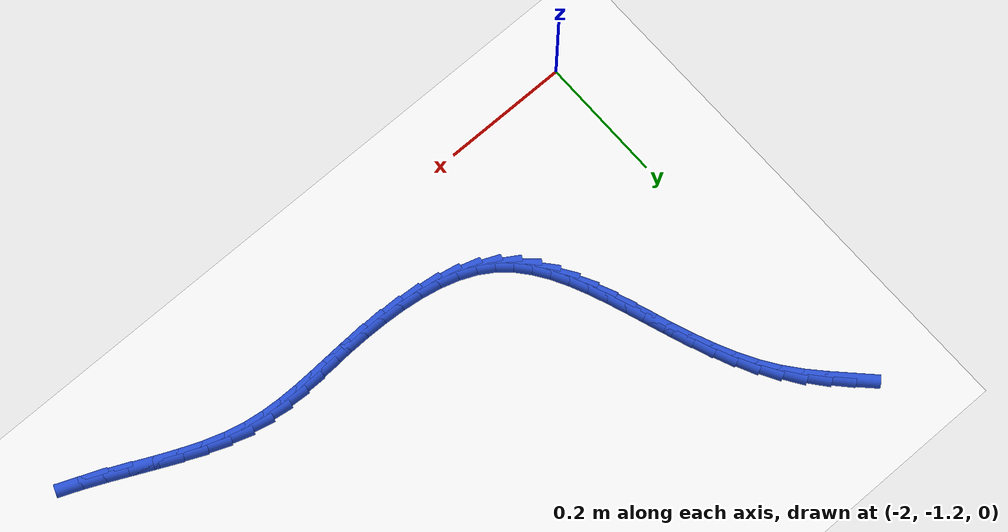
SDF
<sdf version="1.6">
 <world name="default">
  <model name="ground_plane">
   <static>1</static>
   <link name="link">
    <collision name="collision">
     <geometry><plane><normal>0 0 1</normal><size>100 100</size></plane></geometry>
     <surface><friction><ode><mu>100</mu><mu2>50</mu2></ode></friction></surface>
    </collision>
    <visual name="visual">
     <cast_shadows>0</cast_shadows>
     <geometry><plane><normal>0 0 1</normal><size>100 100</size></plane></geometry>
     <material>
      <script><uri>file://media/materials/scripts/gazebo.material</uri><name>Gazebo/WhiteGlow</name></script>
     </material>
    </visual>
   </link>
  </model>
  <model name="line">
   <link name="link_133">
    <pose>-2.002611352327267 -0.565368134742035 0.01 0 1.57 -0.789677448884228</pose>
    <collision name="collision">
     <geometry><cylinder><radius>0.01</radius><length>0.08</length></cylinder></geometry>
    </collision>
    <visual name="visual">
     <material>
      <script><name>Gazebo/Blue</name><uri>file://media/materials/scripts/gazebo.material</uri></script>
     </material>
     <geometry><cylinder><radius>0.01</radius><length>0.08</length></cylinder></geometry>
    </visual>
   </link>
   <link name="link_134">
    <pose>-1.9784343191150222 -0.5897529793617989 0.01 0 1.57 -0.8221368517772105</pose>
    <collision name="collision">
     <geometry><cylinder><radius>0.01</radius><length>0.08</length></cylinder></geometry>
    </collision>
    <visual name="visual">
     <material>
      <script><name>Gazebo/Blue</name><uri>file://media/materials/scripts/gazebo.material</uri></script>
     </material>
     <geometry><cylinder><radius>0.01</radius><length>0.08</length></cylinder></geometry>
    </visual>
   </link>
   <link name="link_135">
    <pose>-1.9548881667045632 -0.6150960668547448 0.01 0 1.57 -0.8876789788598888</pose>
    <collision name="collision">
     <geometry><cylinder><radius>0.01</radius><length>0.08</length></cylinder></geometry>
    </collision>
    <visual name="visual">
     <material>
      <script><name>Gazebo/Blue</name><uri>file://media/materials/scripts/gazebo.material</uri></script>
     </material>
     <geometry><cylinder><radius>0.01</radius><length>0.08</length></cylinder></geometry>
    </visual>
   </link>
   <link name="link_136">
    <pose>-1.9331609353949673 -0.6417935627710604 0.01 0 1.57 -0.9770350653606327</pose>
    <collision name="collision">
     <geometry><cylinder><radius>0.01</radius><length>0.08</length></cylinder></geometry>
    </collision>
    <visual name="visual">
     <material>
      <script><name>Gazebo/Blue</name><uri>file://media/materials/scripts/gazebo.material</uri></script>
     </material>
     <geometry><cylinder><radius>0.01</radius><length>0.08</length></cylinder></geometry>
    </visual>
   </link>
   <link name="link_137">
    <pose>-1.9140731339654895 -0.6700710800599232 0.01 0 1.57 -1.0575223526639508</pose>
    <collision name="collision">
     <geometry><cylinder><radius>0.01</radius><length>0.08</length></cylinder></geometry>
    </collision>
    <visual name="visual">
     <material>
      <script><name>Gazebo/Blue</name><uri>file://media/materials/scripts/gazebo.material</uri></script>
     </material>
     <geometry><cylinder><radius>0.01</radius><length>0.08</length></cylinder></geometry>
    </visual>
   </link>
   <link name="link_138">
    <pose>-1.8973918554884466 -0.6996653952603628 0.01 0 1.57 -1.1225852937675782</pose>
    <collision name="collision">
     <geometry><cylinder><radius>0.01</radius><length>0.08</length></cylinder></geometry>
    </collision>
    <visual name="visual">
     <material>
      <script><name>Gazebo/Blue</name><uri>file://media/materials/scripts/gazebo.material</uri></script>
     </material>
     <geometry><cylinder><radius>0.01</radius><length>0.08</length></cylinder></geometry>
    </visual>
   </link>
   <link name="link_139">
    <pose>-1.8826966488571206 -0.7302262552396269 0.01 0 1.57 -1.1722094722009664</pose>
    <collision name="collision">
     <geometry><cylinder><radius>0.01</radius><length>0.08</length></cylinder></geometry>
    </collision>
    <visual name="visual">
     <material>
      <script><name>Gazebo/Blue</name><uri>file://media/materials/scripts/gazebo.material</uri></script>
     </material>
     <geometry><cylinder><radius>0.01</radius><length>0.08</length></cylinder></geometry>
    </visual>
   </link>
   <link name="link_140">
    <pose>-1.8695670629647936 -0.7614034068649648 0.01 0 1.57 -1.206649129972534</pose>
    <collision name="collision">
     <geometry><cylinder><radius>0.01</radius><length>0.08</length></cylinder></geometry>
    </collision>
    <visual name="visual">
     <material>
      <script><name>Gazebo/Blue</name><uri>file://media/materials/scripts/gazebo.material</uri></script>
     </material>
     <geometry><cylinder><radius>0.01</radius><length>0.08</length></cylinder></geometry>
    </visual>
   </link>
   <link name="link_141">
    <pose>-1.857582646704748 -0.7928465970036227 0.01 0 1.57 -1.2260747306356343</pose>
    <collision name="collision">
     <geometry><cylinder><radius>0.01</radius><length>0.08</length></cylinder></geometry>
    </collision>
    <visual name="visual">
     <material>
      <script><name>Gazebo/Blue</name><uri>file://media/materials/scripts/gazebo.material</uri></script>
     </material>
     <geometry><cylinder><radius>0.01</radius><length>0.08</length></cylinder></geometry>
    </visual>
   </link>
   <link name="link_142">
    <pose>-1.8463229489702648 -0.8242055725228496 0.01 0 1.57 -1.230328178707601</pose>
    <collision name="collision">
     <geometry><cylinder><radius>0.01</radius><length>0.08</length></cylinder></geometry>
    </collision>
    <visual name="visual">
     <material>
      <script><name>Gazebo/Blue</name><uri>file://media/materials/scripts/gazebo.material</uri></script>
     </material>
     <geometry><cylinder><radius>0.01</radius><length>0.08</length></cylinder></geometry>
    </visual>
   </link>
   <link name="link_143">
    <pose>-1.8353675186546259 -0.8551300802898937 0.01 0 1.57 -1.2187562351051264</pose>
    <collision name="collision">
     <geometry><cylinder><radius>0.01</radius><length>0.08</length></cylinder></geometry>
    </collision>
    <visual name="visual">
     <material>
      <script><name>Gazebo/Blue</name><uri>file://media/materials/scripts/gazebo.material</uri></script>
     </material>
     <geometry><cylinder><radius>0.01</radius><length>0.08</length></cylinder></geometry>
    </visual>
   </link>
   <link name="link_144">
    <pose>-1.8242959046511136 -0.8852698671720038 0.01 0 1.57 -1.1901020148531138</pose>
    <collision name="collision">
     <geometry><cylinder><radius>0.01</radius><length>0.08</length></cylinder></geometry>
    </collision>
    <visual name="visual">
     <material>
      <script><name>Gazebo/Blue</name><uri>file://media/materials/scripts/gazebo.material</uri></script>
     </material>
     <geometry><cylinder><radius>0.01</radius><length>0.08</length></cylinder></geometry>
    </visual>
   </link>
   <link name="link_145">
    <pose>-1.8126876558530092 -0.9142746800364261 0.01 0 1.57 -1.142470664020354</pose>
    <collision name="collision">
     <geometry><cylinder><radius>0.01</radius><length>0.08</length></cylinder></geometry>
    </collision>
    <visual name="visual">
     <material>
      <script><name>Gazebo/Blue</name><uri>file://media/materials/scripts/gazebo.material</uri></script>
     </material>
     <geometry><cylinder><radius>0.01</radius><length>0.08</length></cylinder></geometry>
    </visual>
   </link>
   <link name="link_146">
    <pose>-1.800122321153595 -0.9417942657504099 0.01 0 1.57 -1.0734514567704978</pose>
    <collision name="collision">
     <geometry><cylinder><radius>0.01</radius><length>0.08</length></cylinder></geometry>
    </collision>
    <visual name="visual">
     <material>
      <script><name>Gazebo/Blue</name><uri>file://media/materials/scripts/gazebo.material</uri></script>
     </material>
     <geometry><cylinder><radius>0.01</radius><length>0.08</length></cylinder></geometry>
    </visual>
   </link>
   <link name="link_147">
    <pose>-1.7861794494461525 -0.9674783711812031 0.01 0 1.57 -0.9805791510246173</pose>
    <collision name="collision">
     <geometry><cylinder><radius>0.01</radius><length>0.08</length></cylinder></geometry>
    </collision>
    <visual name="visual">
     <material>
      <script><name>Gazebo/Blue</name><uri>file://media/materials/scripts/gazebo.material</uri></script>
     </material>
     <geometry><cylinder><radius>0.01</radius><length>0.08</length></cylinder></geometry>
    </visual>
   </link>
   <link name="link_148">
    <pose>-1.7704385896239627 -0.990976743196054 0.01 0 1.57 -0.8624027510807722</pose>
    <collision name="collision">
     <geometry><cylinder><radius>0.01</radius><length>0.08</length></cylinder></geometry>
    </collision>
    <visual name="visual">
     <material>
      <script><name>Gazebo/Blue</name><uri>file://media/materials/scripts/gazebo.material</uri></script>
     </material>
     <geometry><cylinder><radius>0.01</radius><length>0.08</length></cylinder></geometry>
    </visual>
   </link>
   <link name="link_149">
    <pose>-1.7524792905803084 -1.0119391286622097 0.01 0 1.57 -0.7202780378636988</pose>
    <collision name="collision">
     <geometry><cylinder><radius>0.01</radius><length>0.08</length></cylinder></geometry>
    </collision>
    <visual name="visual">
     <material>
      <script><name>Gazebo/Blue</name><uri>file://media/materials/scripts/gazebo.material</uri></script>
     </material>
     <geometry><cylinder><radius>0.01</radius><length>0.08</length></cylinder></geometry>
    </visual>
   </link>
   <link name="link_150">
    <pose>-1.7318811012084718 -1.0300152744469195 0.01 0 1.57 -0.5610246385203411</pose>
    <collision name="collision">
     <geometry><cylinder><radius>0.01</radius><length>0.08</length></cylinder></geometry>
    </collision>
    <visual name="visual">
     <material>
      <script><name>Gazebo/Blue</name><uri>file://media/materials/scripts/gazebo.material</uri></script>
     </material>
     <geometry><cylinder><radius>0.01</radius><length>0.08</length></cylinder></geometry>
    </visual>
   </link>
   <link name="link_151">
    <pose>-1.708243360831696 -1.0448687067320255 0.01 0 1.57 -0.41180735867655177</pose>
    <collision name="collision">
     <geometry><cylinder><radius>0.01</radius><length>0.08</length></cylinder></geometry>
    </collision>
    <visual name="visual">
     <material>
      <script><name>Gazebo/Blue</name><uri>file://media/materials/scripts/gazebo.material</uri></script>
     </material>
     <geometry><cylinder><radius>0.01</radius><length>0.08</length></cylinder></geometry>
    </visual>
   </link>
   <link name="link_152">
    <pose>-1.6816357423271255 -1.0564904268485242 0.01 0 1.57 -0.2916394969359019</pose>
    <collision name="collision">
     <geometry><cylinder><radius>0.01</radius><length>0.08</length></cylinder></geometry>
    </collision>
    <visual name="visual">
     <material>
      <script><name>Gazebo/Blue</name><uri>file://media/materials/scripts/gazebo.material</uri></script>
     </material>
     <geometry><cylinder><radius>0.01</radius><length>0.08</length></cylinder></geometry>
    </visual>
   </link>
   <link name="link_153">
    <pose>-1.6526068281192263 -1.0652048824106737 0.01 0 1.57 -0.1964795663357338</pose>
    <collision name="collision">
     <geometry><cylinder><radius>0.01</radius><length>0.08</length></cylinder></geometry>
    </collision>
    <visual name="visual">
     <material>
      <script><name>Gazebo/Blue</name><uri>file://media/materials/scripts/gazebo.material</uri></script>
     </material>
     <geometry><cylinder><radius>0.01</radius><length>0.08</length></cylinder></geometry>
    </visual>
   </link>
   <link name="link_154">
    <pose>-1.621726706436676 -1.071351494696383 0.01 0 1.57 -0.12123213608995996</pose>
    <collision name="collision">
     <geometry><cylinder><radius>0.01</radius><length>0.08</length></cylinder></geometry>
    </collision>
    <visual name="visual">
     <material>
      <script><name>Gazebo/Blue</name><uri>file://media/materials/scripts/gazebo.material</uri></script>
     </material>
     <geometry><cylinder><radius>0.01</radius><length>0.08</length></cylinder></geometry>
    </visual>
   </link>
   <link name="link_155">
    <pose>-1.5895654655081484 -1.0752696849835626 0.01 0 1.57 -0.06165129124771765</pose>
    <collision name="collision">
     <geometry><cylinder><radius>0.01</radius><length>0.08</length></cylinder></geometry>
    </collision>
    <visual name="visual">
     <material>
      <script><name>Gazebo/Blue</name><uri>file://media/materials/scripts/gazebo.material</uri></script>
     </material>
     <geometry><cylinder><radius>0.01</radius><length>0.08</length></cylinder></geometry>
    </visual>
   </link>
   <link name="link_156">
    <pose>-1.5566931935623203 -1.077298874550123 0.01 0 1.57 -0.014526800561211483</pose>
    <collision name="collision">
     <geometry><cylinder><radius>0.01</radius><length>0.08</length></cylinder></geometry>
    </collision>
    <visual name="visual">
     <material>
      <script><name>Gazebo/Blue</name><uri>file://media/materials/scripts/gazebo.material</uri></script>
     </material>
     <geometry><cylinder><radius>0.01</radius><length>0.08</length></cylinder></geometry>
    </visual>
   </link>
   <link name="link_157">
    <pose>-1.5236799788278659 -1.0777784846739742 0.01 0 1.57 0.022415412394296452</pose>
    <collision name="collision">
     <geometry><cylinder><radius>0.01</radius><length>0.08</length></cylinder></geometry>
    </collision>
    <visual name="visual">
     <material>
      <script><name>Gazebo/Blue</name><uri>file://media/materials/scripts/gazebo.material</uri></script>
     </material>
     <geometry><cylinder><radius>0.01</radius><length>0.08</length></cylinder></geometry>
    </visual>
   </link>
   <link name="link_158">
    <pose>-1.4910958148311237 -1.077047974847971 0.01 0 1.57 0.04812205957524177</pose>
    <collision name="collision">
     <geometry><cylinder><radius>0.01</radius><length>0.08</length></cylinder></geometry>
    </collision>
    <visual name="visual">
     <material>
      <script><name>Gazebo/Blue</name><uri>file://media/materials/scripts/gazebo.material</uri></script>
     </material>
     <geometry><cylinder><radius>0.01</radius><length>0.08</length></cylinder></geometry>
    </visual>
   </link>
   <link name="link_159">
    <pose>-1.4593334593891019 -1.0755183239506536 0.01 0 1.57 0.054551450388277904</pose>
    <collision name="collision">
     <geometry><cylinder><radius>0.01</radius><length>0.08</length></cylinder></geometry>
    </collision>
    <visual name="visual">
     <material>
      <script><name>Gazebo/Blue</name><uri>file://media/materials/scripts/gazebo.material</uri></script>
     </material>
     <geometry><cylinder><radius>0.01</radius><length>0.08</length></cylinder></geometry>
    </visual>
   </link>
   <link name="link_160">
    <pose>-1.4282405619515355 -1.0738204767788588 0.01 0 1.57 0.038863673488702274</pose>
    <collision name="collision">
     <geometry><cylinder><radius>0.01</radius><length>0.08</length></cylinder></geometry>
    </collision>
    <visual name="visual">
     <material>
      <script><name>Gazebo/Blue</name><uri>file://media/materials/scripts/gazebo.material</uri></script>
     </material>
     <geometry><cylinder><radius>0.01</radius><length>0.08</length></cylinder></geometry>
    </visual>
   </link>
   <link name="link_161">
    <pose>-1.3975603157158227 -1.0726275290426142 0.01 0 1.57 0.0004898569201332533</pose>
    <collision name="collision">
     <geometry><cylinder><radius>0.01</radius><length>0.08</length></cylinder></geometry>
    </collision>
    <visual name="visual">
     <material>
      <script><name>Gazebo/Blue</name><uri>file://media/materials/scripts/gazebo.material</uri></script>
     </material>
     <geometry><cylinder><radius>0.01</radius><length>0.08</length></cylinder></geometry>
    </visual>
   </link>
   <link name="link_162">
    <pose>-1.3670359138793595 -1.0726125764519456 0.01 0 1.57 -0.059883139162836566</pose>
    <collision name="collision">
     <geometry><cylinder><radius>0.01</radius><length>0.08</length></cylinder></geometry>
    </collision>
    <visual name="visual">
     <material>
      <script><name>Gazebo/Blue</name><uri>file://media/materials/scripts/gazebo.material</uri></script>
     </material>
     <geometry><cylinder><radius>0.01</radius><length>0.08</length></cylinder></geometry>
    </visual>
   </link>
   <link name="link_163">
    <pose>-1.336410549639545 -1.0744487147168804 0.01 0 1.57 -0.13981400334883737</pose>
    <collision name="collision">
     <geometry><cylinder><radius>0.01</radius><length>0.08</length></cylinder></geometry>
    </collision>
    <visual name="visual">
     <material>
      <script><name>Gazebo/Blue</name><uri>file://media/materials/scripts/gazebo.material</uri></script>
     </material>
     <geometry><cylinder><radius>0.01</radius><length>0.08</length></cylinder></geometry>
    </visual>
   </link>
   <link name="link_164">
    <pose>-1.3054274161937767 -1.0788090395474457 0.01 0 1.57 -0.23443994281665467</pose>
    <collision name="collision">
     <geometry><cylinder><radius>0.01</radius><length>0.08</length></cylinder></geometry>
    </collision>
    <visual name="visual">
     <material>
      <script><name>Gazebo/Blue</name><uri>file://media/materials/scripts/gazebo.material</uri></script>
     </material>
     <geometry><cylinder><radius>0.01</radius><length>0.08</length></cylinder></geometry>
    </visual>
   </link>
   <link name="link_165">
    <pose>-1.273833771572049 -1.0863546009152794 0.01 0 1.57 -0.32299415893690153</pose>
    <collision name="collision">
     <geometry><cylinder><radius>0.01</radius><length>0.08</length></cylinder></geometry>
    </collision>
    <visual name="visual">
     <material>
      <script><name>Gazebo/Blue</name><uri>file://media/materials/scripts/gazebo.material</uri></script>
     </material>
     <geometry><cylinder><radius>0.01</radius><length>0.08</length></cylinder></geometry>
    </visual>
   </link>
   <link name="link_166">
    <pose>-1.241577740177188 -1.0971512007171573 0.01 0 1.57 -0.3853742151075374</pose>
    <collision name="collision">
     <geometry><cylinder><radius>0.01</radius><length>0.08</length></cylinder></geometry>
    </collision>
    <visual name="visual">
     <material>
      <script><name>Gazebo/Blue</name><uri>file://media/materials/scripts/gazebo.material</uri></script>
     </material>
     <geometry><cylinder><radius>0.01</radius><length>0.08</length></cylinder></geometry>
    </visual>
   </link>
   <link name="link_167">
    <pose>-1.2088962886072219 -1.1104086849314696 0.01 0 1.57 -0.4248895610013233</pose>
    <collision name="collision">
     <geometry><cylinder><radius>0.01</radius><length>0.08</length></cylinder></geometry>
    </collision>
    <visual name="visual">
     <material>
      <script><name>Gazebo/Blue</name><uri>file://media/materials/scripts/gazebo.material</uri></script>
     </material>
     <geometry><cylinder><radius>0.01</radius><length>0.08</length></cylinder></geometry>
    </visual>
   </link>
   <link name="link_168">
    <pose>-1.1760487744697103 -1.1252705459447514 0.01 0 1.57 -0.444729829688943</pose>
    <collision name="collision">
     <geometry><cylinder><radius>0.01</radius><length>0.08</length></cylinder></geometry>
    </collision>
    <visual name="visual">
     <material>
      <script><name>Gazebo/Blue</name><uri>file://media/materials/scripts/gazebo.material</uri></script>
     </material>
     <geometry><cylinder><radius>0.01</radius><length>0.08</length></cylinder></geometry>
    </visual>
   </link>
   <link name="link_169">
    <pose>-1.1432945553722158 -1.1408802761435386 0.01 0 1.57 -0.4462233540327663</pose>
    <collision name="collision">
     <geometry><cylinder><radius>0.01</radius><length>0.08</length></cylinder></geometry>
    </collision>
    <visual name="visual">
     <material>
      <script><name>Gazebo/Blue</name><uri>file://media/materials/scripts/gazebo.material</uri></script>
     </material>
     <geometry><cylinder><radius>0.01</radius><length>0.08</length></cylinder></geometry>
    </visual>
   </link>
   <link name="link_170">
    <pose>-1.110892988922298 -1.1563813679143657 0.01 0 1.57 -0.42887109949398206</pose>
    <collision name="collision">
     <geometry><cylinder><radius>0.01</radius><length>0.08</length></cylinder></geometry>
    </collision>
    <visual name="visual">
     <material>
      <script><name>Gazebo/Blue</name><uri>file://media/materials/scripts/gazebo.material</uri></script>
     </material>
     <geometry><cylinder><radius>0.01</radius><length>0.08</length></cylinder></geometry>
    </visual>
   </link>
   <link name="link_171">
    <pose>-1.0791034327275197 -1.1709173136437683 0.01 0 1.57 -0.39014438707594384</pose>
    <collision name="collision">
     <geometry><cylinder><radius>0.01</radius><length>0.08</length></cylinder></geometry>
    </collision>
    <visual name="visual">
     <material>
      <script><name>Gazebo/Blue</name><uri>file://media/materials/scripts/gazebo.material</uri></script>
     </material>
     <geometry><cylinder><radius>0.01</radius><length>0.08</length></cylinder></geometry>
    </visual>
   </link>
  </model>
 </world>
</sdf>
